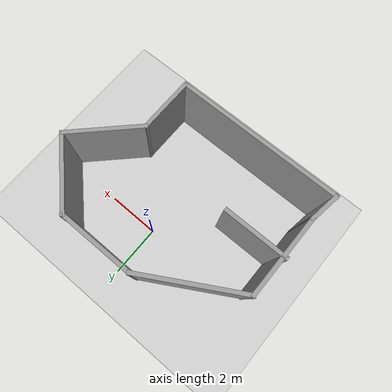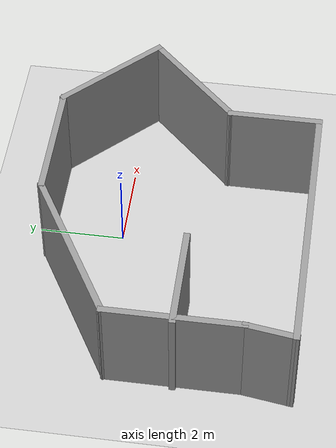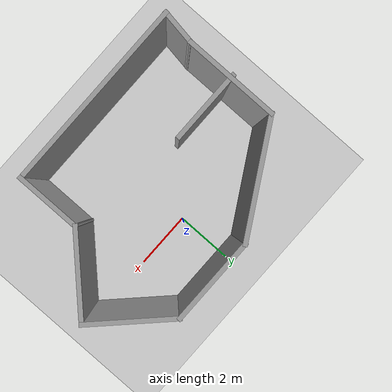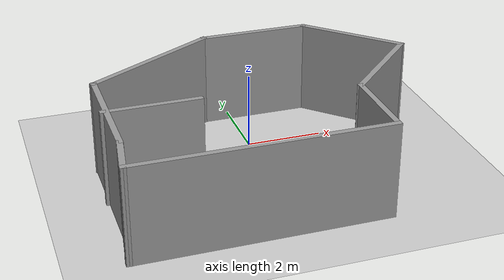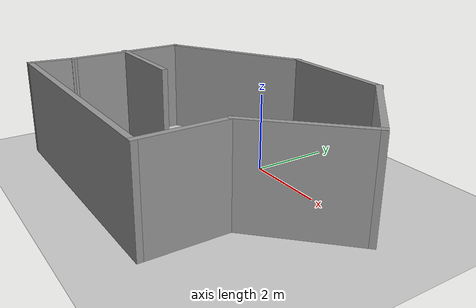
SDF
<sdf version="1.7">
 <world name="default">
  <light name="sun" type="directional">
   <pose>0 0 10 0 -0 0</pose>
   <diffuse>0.8 0.8 0.8 1</diffuse>
   <specular>0.2 0.2 0.2 1</specular>
   <attenuation>
    <range>1000</range>
    <constant>0.9</constant>
    <linear>0.01</linear>
    <quadratic>0.001</quadratic>
   </attenuation>
   <direction>-0.5 0.1 -0.9</direction>
   <spot><inner_angle>0</inner_angle><outer_angle>0</outer_angle><falloff>0</falloff></spot>
  </light>
  <model name="ground_plane">
   <static>1</static>
   <link name="link">
    <collision name="collision">
     <geometry><plane><normal>0 0 1</normal><size>100 100</size></plane></geometry>
     <surface><friction><ode><mu>100</mu><mu2>50</mu2></ode></friction></surface>
    </collision>
    <visual name="visual">
     <cast_shadows>0</cast_shadows>
     <geometry><plane><normal>0 0 1</normal><size>100 100</size></plane></geometry>
     <material>
      <script><uri>file://media/materials/scripts/gazebo.material</uri><name>Gazebo/Grey</name></script>
     </material>
    </visual>
   </link>
  </model>
  <gravity>0 0 -9.8</gravity>
  <magnetic_field>6e-06 2.3e-05 -4.2e-05</magnetic_field>
  <atmosphere type="adiabatic"/>
  <physics type="ode">
   <max_step_size>0.001</max_step_size>
   <real_time_factor>1</real_time_factor>
   <real_time_update_rate>1000</real_time_update_rate>
  </physics>
  <scene><ambient>0.4 0.4 0.4 1</ambient><background>0.7 0.7 0.7 1</background><shadows>1</shadows></scene>
  <audio><device>default</device></audio>
  <spherical_coordinates>
   <surface_model>EARTH_WGS84</surface_model>
   <latitude_deg>0</latitude_deg>
   <longitude_deg>0</longitude_deg>
   <elevation>0</elevation>
   <heading_deg>0</heading_deg>
  </spherical_coordinates>
  <model name="neljas">
   <pose>-0.025555 -1.34202 0 0 -0 0</pose>
   <link name="Wall_0">
    <collision name="Wall_0_Collision">
     <geometry><box><size>3.25 0.15 2.5</size></box></geometry>
     <pose>0 0 1.25 0 -0 0</pose>
    </collision>
    <visual name="Wall_0_Visual">
     <pose>0 0 1.25 0 -0 0</pose>
     <geometry><box><size>3.25 0.15 2.5</size></box></geometry>
     <material>
      <script><uri>file://media/materials/scripts/gazebo.material</uri><name>Gazebo/Grey</name></script>
      <ambient>1 1 1 1</ambient>
     </material>
     <meta><layer>0</layer></meta>
    </visual>
    <pose>-4.02721 -0.420132 0 0 -0 1.5708</pose>
   </link>
   <link name="Wall_1">
    <collision name="Wall_1_Collision">
     <geometry><box><size>4 0.15 2.5</size></box></geometry>
     <pose>0 0 1.25 0 -0 0</pose>
    </collision>
    <visual name="Wall_1_Visual">
     <pose>0 0 1.25 0 -0 0</pose>
     <geometry><box><size>4 0.15 2.5</size></box></geometry>
     <material>
      <script><uri>file://media/materials/scripts/gazebo.material</uri><name>Gazebo/Grey</name></script>
      <ambient>1 1 1 1</ambient>
     </material>
     <meta><layer>0</layer></meta>
    </visual>
    <pose>-2.36011 2.09237 0 0 -0 0.523599</pose>
   </link>
   <link name="Wall_2">
    <collision name="Wall_2_Collision">
     <geometry><box><size>3 0.15 2.5</size></box></geometry>
     <pose>0 0 1.25 0 -0 0</pose>
    </collision>
    <visual name="Wall_2_Visual">
     <pose>0 0 1.25 0 -0 0</pose>
     <geometry><box><size>3 0.15 2.5</size></box></geometry>
     <material>
      <script><uri>file://media/materials/scripts/gazebo.material</uri><name>Gazebo/Grey</name></script>
      <ambient>1 1 1 1</ambient>
     </material>
     <meta><layer>0</layer></meta>
    </visual>
    <pose>0.731987 3.05487 0 0 -0 0</pose>
   </link>
   <link name="Wall_3">
    <collision name="Wall_3_Collision">
     <geometry><box><size>3 0.15 2.5</size></box></geometry>
     <pose>0 0 1.25 0 -0 0</pose>
    </collision>
    <visual name="Wall_3_Visual">
     <pose>0 0 1.25 0 -0 0</pose>
     <geometry><box><size>3 0.15 2.5</size></box></geometry>
     <material>
      <script><uri>file://media/materials/scripts/gazebo.material</uri><name>Gazebo/Grey</name></script>
      <ambient>1 1 1 1</ambient>
     </material>
     <meta><layer>0</layer></meta>
    </visual>
    <pose>3.16461 2.04724 0 0 -0 -0.785398</pose>
   </link>
   <link name="Wall_4">
    <collision name="Wall_4_Collision">
     <geometry><box><size>3 0.15 2.5</size></box></geometry>
     <pose>0 0 1.25 0 -0 0</pose>
    </collision>
    <visual name="Wall_4_Visual">
     <pose>0 0 1.25 0 -0 0</pose>
     <geometry><box><size>3 0.15 2.5</size></box></geometry>
     <material>
      <script><uri>file://media/materials/scripts/gazebo.material</uri><name>Gazebo/Grey</name></script>
      <ambient>1 1 1 1</ambient>
     </material>
     <meta><layer>0</layer></meta>
    </visual>
    <pose>3.16461 0.031987 0 0 -0 -2.35619</pose>
   </link>
   <link name="Wall_5">
    <collision name="Wall_5_Collision">
     <geometry><box><size>2.25 0.15 2.5</size></box></geometry>
     <pose>0 0 1.25 0 -0 0</pose>
    </collision>
    <visual name="Wall_5_Visual">
     <pose>0 0 1.25 0 -0 0</pose>
     <geometry><box><size>2.25 0.15 2.5</size></box></geometry>
     <material>
      <script><uri>file://media/materials/scripts/gazebo.material</uri><name>Gazebo/Grey</name></script>
      <ambient>1 1 1 1</ambient>
     </material>
     <meta><layer>0</layer></meta>
    </visual>
    <pose>2.15699 -2.02564 0 0 -0 -1.5708</pose>
   </link>
   <link name="Wall_6">
    <collision name="Wall_6_Collision">
     <geometry><box><size>6.5 0.15 2.5</size></box></geometry>
     <pose>0 0 1.25 0 -0 0</pose>
    </collision>
    <visual name="Wall_6_Visual">
     <pose>0 0 1.25 0 -0 0</pose>
     <geometry><box><size>6.5 0.15 2.5</size></box></geometry>
     <material>
      <script><uri>file://media/materials/scripts/gazebo.material</uri><name>Gazebo/Grey</name></script>
      <ambient>1 1 1 1</ambient>
     </material>
     <meta><layer>0</layer></meta>
    </visual>
    <pose>-1.01801 -3.07564 0 0 -0 3.14159</pose>
   </link>
   <link name="Wall_7">
    <collision name="Wall_7_Collision">
     <geometry><box><size>1.26787 0.15 2.5</size></box></geometry>
     <pose>0 0 1.25 0 -0 0</pose>
    </collision>
    <visual name="Wall_7_Visual">
     <pose>0 0 1.25 0 -0 0</pose>
     <geometry><box><size>1.26787 0.15 2.5</size></box></geometry>
     <material>
      <script><uri>file://media/materials/scripts/gazebo.material</uri><name>Gazebo/Grey</name></script>
      <ambient>1 1 1 1</ambient>
     </material>
     <meta><layer>0</layer></meta>
    </visual>
    <pose>-4.11011 -2.52289 0 0 -0 1.42193</pose>
   </link>
   <link name="Wall_9">
    <collision name="Wall_9_Collision">
     <geometry><box><size>2.5 0.15 2.5</size></box></geometry>
     <pose>0 0 1.25 0 -0 0</pose>
    </collision>
    <visual name="Wall_9_Visual">
     <pose>0 0 1.25 0 -0 0</pose>
     <geometry><box><size>2.5 0.15 2.5</size></box></geometry>
     <material>
      <script><uri>file://media/materials/scripts/gazebo.material</uri><name>Gazebo/Grey</name></script>
      <ambient>1 1 1 1</ambient>
     </material>
     <meta><layer>0</layer></meta>
    </visual>
    <pose>-2.93458 -0.428861 0 0 -0 0</pose>
   </link>
   <static>1</static>
  </model>
 </world>
</sdf>
